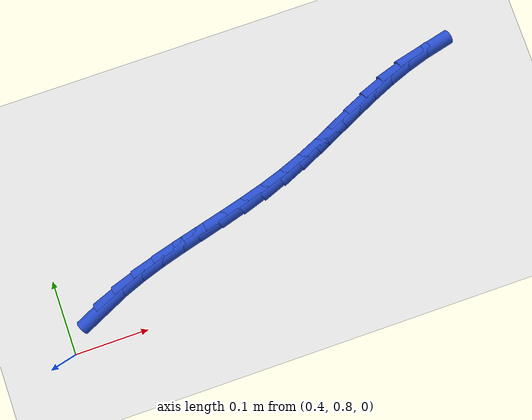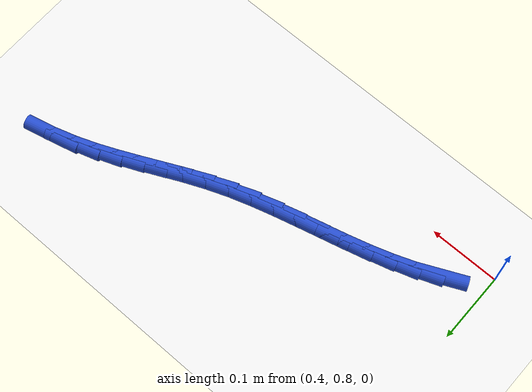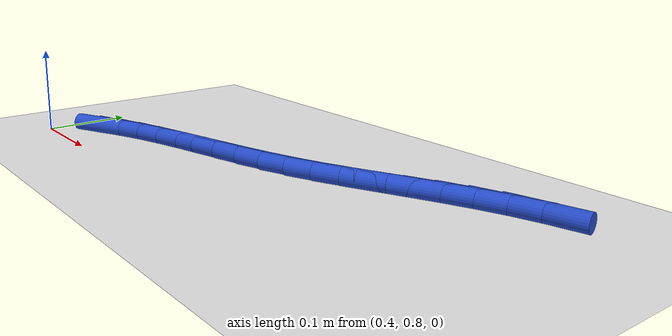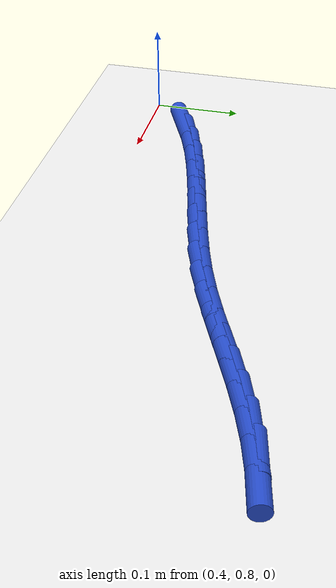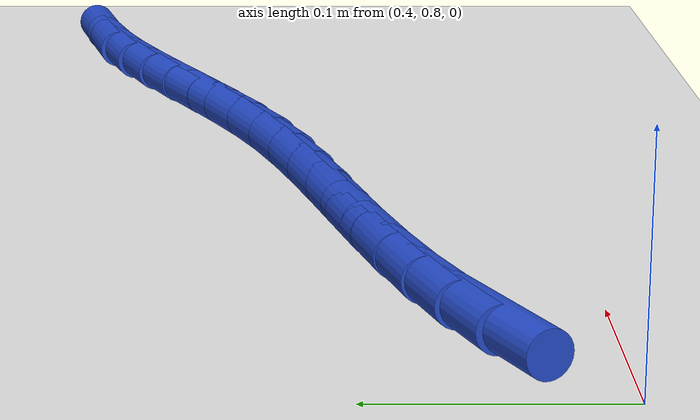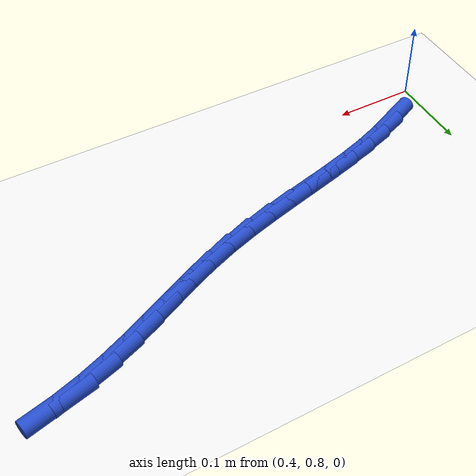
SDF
<sdf version="1.6">
 <world name="default">
  <model name="ground_plane">
   <static>1</static>
   <link name="link">
    <collision name="collision">
     <geometry><plane><normal>0 0 1</normal><size>100 100</size></plane></geometry>
     <surface><friction><ode><mu>100</mu><mu2>50</mu2></ode></friction></surface>
    </collision>
    <visual name="visual">
     <cast_shadows>0</cast_shadows>
     <geometry><plane><normal>0 0 1</normal><size>100 100</size></plane></geometry>
     <material>
      <script><uri>file://media/materials/scripts/gazebo.material</uri><name>Gazebo/WhiteGlow</name></script>
     </material>
    </visual>
   </link>
  </model>
  <model name="line">
   <link name="link_32">
    <pose>0.45817864815941817 0.8473417963887165 0.01 0 1.57 0.43431166738604354</pose>
    <collision name="collision">
     <geometry><cylinder><radius>0.01</radius><length>0.08</length></cylinder></geometry>
    </collision>
    <visual name="visual">
     <material>
      <script><name>Gazebo/Blue</name><uri>file://media/materials/scripts/gazebo.material</uri></script>
     </material>
     <geometry><cylinder><radius>0.01</radius><length>0.08</length></cylinder></geometry>
    </visual>
   </link>
   <link name="link_33">
    <pose>0.4856302662462879 0.8600752280671036 0.01 0 1.57 0.3630283458589276</pose>
    <collision name="collision">
     <geometry><cylinder><radius>0.01</radius><length>0.08</length></cylinder></geometry>
    </collision>
    <visual name="visual">
     <material>
      <script><name>Gazebo/Blue</name><uri>file://media/materials/scripts/gazebo.material</uri></script>
     </material>
     <geometry><cylinder><radius>0.01</radius><length>0.08</length></cylinder></geometry>
    </visual>
   </link>
   <link name="link_34">
    <pose>0.5146451713171074 0.871096951971303 0.01 0 1.57 0.3103395812686688</pose>
    <collision name="collision">
     <geometry><cylinder><radius>0.01</radius><length>0.08</length></cylinder></geometry>
    </collision>
    <visual name="visual">
     <material>
      <script><name>Gazebo/Blue</name><uri>file://media/materials/scripts/gazebo.material</uri></script>
     </material>
     <geometry><cylinder><radius>0.01</radius><length>0.08</length></cylinder></geometry>
    </visual>
   </link>
   <link name="link_35">
    <pose>0.5448999877456098 0.8807997312451785 0.01 0 1.57 0.2744544623593206</pose>
    <collision name="collision">
     <geometry><cylinder><radius>0.01</radius><length>0.08</length></cylinder></geometry>
    </collision>
    <visual name="visual">
     <material>
      <script><name>Gazebo/Blue</name><uri>file://media/materials/scripts/gazebo.material</uri></script>
     </material>
     <geometry><cylinder><radius>0.01</radius><length>0.08</length></cylinder></geometry>
    </visual>
   </link>
   <link name="link_36">
    <pose>0.5760713399055274 0.8895763290325926 0.01 0 1.57 0.25390817112056835</pose>
    <collision name="collision">
     <geometry><cylinder><radius>0.01</radius><length>0.08</length></cylinder></geometry>
    </collision>
    <visual name="visual">
     <material>
      <script><name>Gazebo/Blue</name><uri>file://media/materials/scripts/gazebo.material</uri></script>
     </material>
     <geometry><cylinder><radius>0.01</radius><length>0.08</length></cylinder></geometry>
    </visual>
   </link>
   <link name="link_37">
    <pose>0.6078358521705939 0.8978195084774098 0.01 0 1.57 0.2477370313288137</pose>
    <collision name="collision">
     <geometry><cylinder><radius>0.01</radius><length>0.08</length></cylinder></geometry>
    </collision>
    <visual name="visual">
     <material>
      <script><name>Gazebo/Blue</name><uri>file://media/materials/scripts/gazebo.material</uri></script>
     </material>
     <geometry><cylinder><radius>0.01</radius><length>0.08</length></cylinder></geometry>
    </visual>
   </link>
   <link name="link_38">
    <pose>0.6398701489145413 0.905922032723492 0.01 0 1.57 0.255528976271041</pose>
    <collision name="collision">
     <geometry><cylinder><radius>0.01</radius><length>0.08</length></cylinder></geometry>
    </collision>
    <visual name="visual">
     <material>
      <script><name>Gazebo/Blue</name><uri>file://media/materials/scripts/gazebo.material</uri></script>
     </material>
     <geometry><cylinder><radius>0.01</radius><length>0.08</length></cylinder></geometry>
    </visual>
   </link>
   <link name="link_39">
    <pose>0.6718508545111028 0.9142766649147034 0.01 0 1.57 0.277417834478141</pose>
    <collision name="collision">
     <geometry><cylinder><radius>0.01</radius><length>0.08</length></cylinder></geometry>
    </collision>
    <visual name="visual">
     <material>
      <script><name>Gazebo/Blue</name><uri>file://media/materials/scripts/gazebo.material</uri></script>
     </material>
     <geometry><cylinder><radius>0.01</radius><length>0.08</length></cylinder></geometry>
    </visual>
   </link>
   <link name="link_40">
    <pose>0.7034545933340117 0.923276168194907 0.01 0 1.57 0.31404263416070194</pose>
    <collision name="collision">
     <geometry><cylinder><radius>0.01</radius><length>0.08</length></cylinder></geometry>
    </collision>
    <visual name="visual">
     <material>
      <script><name>Gazebo/Blue</name><uri>file://media/materials/scripts/gazebo.material</uri></script>
     </material>
     <geometry><cylinder><radius>0.01</radius><length>0.08</length></cylinder></geometry>
    </visual>
   </link>
   <link name="link_41">
    <pose>0.7343579897570004 0.9333133057079659 0.01 0 1.57 0.3643122296036999</pose>
    <collision name="collision">
     <geometry><cylinder><radius>0.01</radius><length>0.08</length></cylinder></geometry>
    </collision>
    <visual name="visual">
     <material>
      <script><name>Gazebo/Blue</name><uri>file://media/materials/scripts/gazebo.material</uri></script>
     </material>
     <geometry><cylinder><radius>0.01</radius><length>0.08</length></cylinder></geometry>
    </visual>
   </link>
   <link name="link_42">
    <pose>0.7642777164148208 0.9447227168082878 0.01 0 1.57 0.4088945234355263</pose>
    <collision name="collision">
     <geometry><cylinder><radius>0.01</radius><length>0.08</length></cylinder></geometry>
    </collision>
    <visual name="visual">
     <material>
      <script><name>Gazebo/Blue</name><uri>file://media/materials/scripts/gazebo.material</uri></script>
     </material>
     <geometry><cylinder><radius>0.01</radius><length>0.08</length></cylinder></geometry>
    </visual>
   </link>
   <link name="link_43">
    <pose>0.7933021807018763 0.9572995259661532 0.01 0 1.57 0.4361726385905524</pose>
    <collision name="collision">
     <geometry><cylinder><radius>0.01</radius><length>0.08</length></cylinder></geometry>
    </collision>
    <visual name="visual">
     <material>
      <script><name>Gazebo/Blue</name><uri>file://media/materials/scripts/gazebo.material</uri></script>
     </material>
     <geometry><cylinder><radius>0.01</radius><length>0.08</length></cylinder></geometry>
    </visual>
   </link>
   <link name="link_44">
    <pose>0.8217214786667539 0.9705461381036493 0.01 0 1.57 0.44534689665823335</pose>
    <collision name="collision">
     <geometry><cylinder><radius>0.01</radius><length>0.08</length></cylinder></geometry>
    </collision>
    <visual name="visual">
     <material>
      <script><name>Gazebo/Blue</name><uri>file://media/materials/scripts/gazebo.material</uri></script>
     </material>
     <geometry><cylinder><radius>0.01</radius><length>0.08</length></cylinder></geometry>
    </visual>
   </link>
   <link name="link_45">
    <pose>0.849827705871831 0.9839620561612165 0.01 0 1.57 0.4359917959759961</pose>
    <collision name="collision">
     <geometry><cylinder><radius>0.01</radius><length>0.08</length></cylinder></geometry>
    </collision>
    <visual name="visual">
     <material>
      <script><name>Gazebo/Blue</name><uri>file://media/materials/scripts/gazebo.material</uri></script>
     </material>
     <geometry><cylinder><radius>0.01</radius><length>0.08</length></cylinder></geometry>
    </visual>
   </link>
   <link name="link_46">
    <pose>0.8779129578794848 0.997046783079294 0.01 0 1.57 0.40787644396506917</pose>
    <collision name="collision">
     <geometry><cylinder><radius>0.01</radius><length>0.08</length></cylinder></geometry>
    </collision>
    <visual name="visual">
     <material>
      <script><name>Gazebo/Blue</name><uri>file://media/materials/scripts/gazebo.material</uri></script>
     </material>
     <geometry><cylinder><radius>0.01</radius><length>0.08</length></cylinder></geometry>
    </visual>
   </link>
   <link name="link_47">
    <pose>0.9062693302520927 1.0092998217983216 0.01 0 1.57 0.36107289424932015</pose>
    <collision name="collision">
     <geometry><cylinder><radius>0.01</radius><length>0.08</length></cylinder></geometry>
    </collision>
    <visual name="visual">
     <material>
      <script><name>Gazebo/Blue</name><uri>file://media/materials/scripts/gazebo.material</uri></script>
     </material>
     <geometry><cylinder><radius>0.01</radius><length>0.08</length></cylinder></geometry>
    </visual>
   </link>
   <link name="link_48">
    <pose>0.9351889185520318 1.0202206752587393 0.01 0 1.57 0.29907786903546074</pose>
    <collision name="collision">
     <geometry><cylinder><radius>0.01</radius><length>0.08</length></cylinder></geometry>
    </collision>
    <visual name="visual">
     <material>
      <script><name>Gazebo/Blue</name><uri>file://media/materials/scripts/gazebo.material</uri></script>
     </material>
     <geometry><cylinder><radius>0.01</radius><length>0.08</length></cylinder></geometry>
    </visual>
   </link>
   <link name="link_49">
    <pose>0.9649033268434378 1.0293824049245281 0.01 0 1.57 0.23609268102748873</pose>
    <collision name="collision">
     <geometry><cylinder><radius>0.01</radius><length>0.08</length></cylinder></geometry>
    </collision>
    <visual name="visual">
     <material>
      <script><name>Gazebo/Blue</name><uri>file://media/materials/scripts/gazebo.material</uri></script>
     </material>
     <geometry><cylinder><radius>0.01</radius><length>0.08</length></cylinder></geometry>
    </visual>
   </link>
  </model>
 </world>
</sdf>
